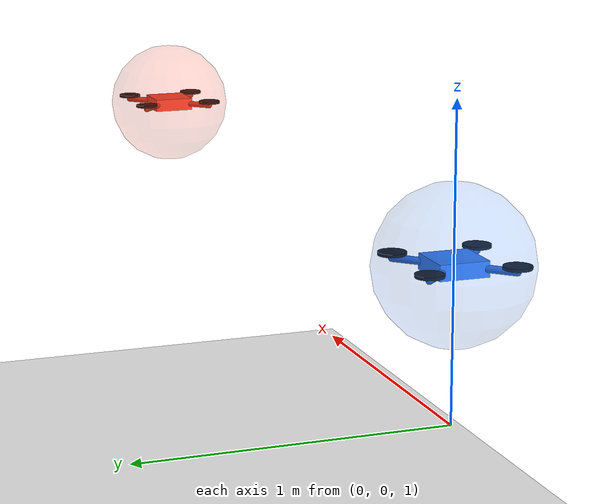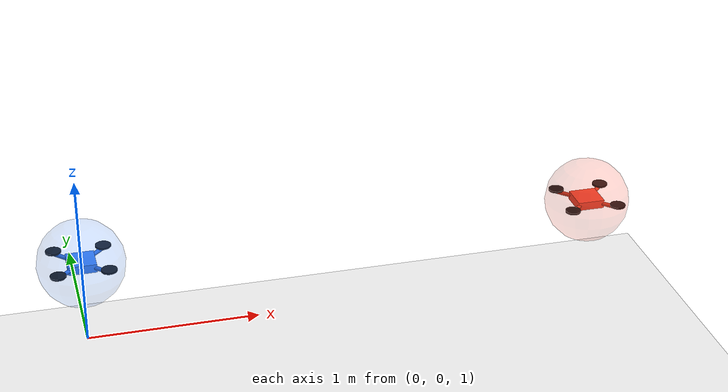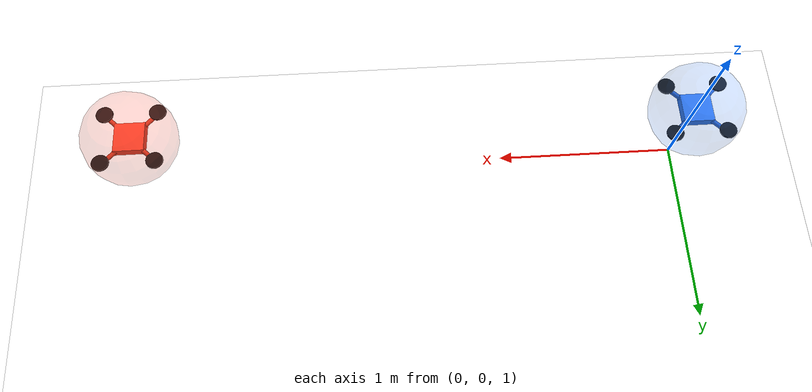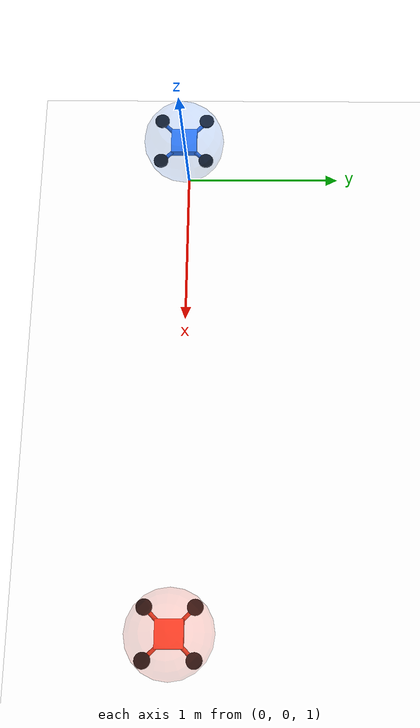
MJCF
<mujoco model="two_drones">

  <compiler angle="radian" autolimits="true"/>

  <option gravity="0 0 -9.81" timestep="0.002" integrator="RK4"
          cone="pyramidal" noslip_iterations="0"/>

  <visual>
    <headlight ambient="0.4 0.4 0.4" diffuse="0.8 0.8 0.8" specular="0.1 0.1 0.1"/>
    <rgba haze="0.15 0.25 0.35 1"/>
    <global fovy="60" linewidth="2"/>
  </visual>

  <asset>
    <texture type="skybox" builtin="gradient"
             rgb1="0.53 0.70 0.92" rgb2="0.12 0.18 0.30"
             width="512" height="512"/>
    <texture name="grid" type="2d" builtin="checker"
             rgb1="0.55 0.55 0.55" rgb2="0.45 0.45 0.45"
             width="512" height="512" mark="edge" markrgb="0.3 0.3 0.3"/>
    <material name="grid"    texture="grid" texrepeat="6 6" reflectance="0.1"/>
    <material name="m_evader"  rgba="0.20 0.50 1.00 1.0"/>
    <material name="m_pursuer" rgba="1.00 0.25 0.15 1.0"/>
    <material name="m_arm"     rgba="0.25 0.25 0.25 0.9"/>
  </asset>

  <worldbody>

    <!-- Lighting -->
    <light name="sun" pos="0 0 8" dir="0 0 -1"
           diffuse="0.9 0.9 0.9" specular="0.2 0.2 0.2" castshadow="true"/>
    <light name="fill" pos="5 -5 4" dir="-1 1 -1"
           diffuse="0.4 0.4 0.4" specular="0 0 0" castshadow="false"/>

    <!-- Ground (visual only, no contact with drones) -->
    <geom name="ground" type="plane" size="12 12 0.1"
          material="grid" contype="0" conaffinity="0" rgba="1 1 1 0.3"/>

    <!-- Workspace sphere boundary marker (visual wireframe) -->
    <!-- Sphere at [0, 0, 1.5] radius 4.0 m -->

    <!-- ══════════════════════════════════════════════════════
         EVADER  (drone 0)   — blue
         ════════════════════════════════════════════════════ -->
    <body name="evader" pos="0 0 1.5">
      <freejoint name="evader_joint"/>

      <inertial mass="1.08" pos="0 0 0"
                diaginertia="0.010 0.010 0.018"/>

      <!-- Central frame (box) -->
      <geom name="evader_frame" type="box" size="0.08 0.08 0.025"
            material="m_evader" contype="1" conaffinity="1"/>

      <!-- Arms (X-configuration) -->
      <geom type="capsule" size="0.012"
            fromto="-0.14 -0.14 0  0.14 0.14 0"
            rgba="0.15 0.40 0.85 0.9" contype="0" conaffinity="0"/>
      <geom type="capsule" size="0.012"
            fromto=" 0.14 -0.14 0 -0.14 0.14 0"
            rgba="0.15 0.40 0.85 0.9" contype="0" conaffinity="0"/>

      <!-- Motor discs (visual only) -->
      <geom type="cylinder" size="0.045 0.005" pos=" 0.14  0.14 0.015"
            rgba="0.05 0.05 0.05 0.9" contype="0" conaffinity="0"/>
      <geom type="cylinder" size="0.045 0.005" pos="-0.14  0.14 0.015"
            rgba="0.05 0.05 0.05 0.9" contype="0" conaffinity="0"/>
      <geom type="cylinder" size="0.045 0.005" pos=" 0.14 -0.14 0.015"
            rgba="0.05 0.05 0.05 0.9" contype="0" conaffinity="0"/>
      <geom type="cylinder" size="0.045 0.005" pos="-0.14 -0.14 0.015"
            rgba="0.05 0.05 0.05 0.9" contype="0" conaffinity="0"/>

      <!-- Bounding sphere for collision detection (d_min = 0.5 m → radius 0.25) -->
      <geom name="evader_col" type="sphere" size="0.25"
            rgba="0.2 0.5 1.0 0.05"
            contype="1" conaffinity="1"/>

    </body>

    <!-- ══════════════════════════════════════════════════════
         PURSUER (drone 1)   — red
         ════════════════════════════════════════════════════ -->
    <body name="pursuer" pos="3 0 1.5">
      <freejoint name="pursuer_joint"/>

      <inertial mass="1.08" pos="0 0 0"
                diaginertia="0.010 0.010 0.018"/>

      <!-- Central frame -->
      <geom name="pursuer_frame" type="box" size="0.08 0.08 0.025"
            material="m_pursuer" contype="1" conaffinity="1"/>

      <!-- Arms -->
      <geom type="capsule" size="0.012"
            fromto="-0.14 -0.14 0  0.14 0.14 0"
            rgba="0.85 0.20 0.10 0.9" contype="0" conaffinity="0"/>
      <geom type="capsule" size="0.012"
            fromto=" 0.14 -0.14 0 -0.14 0.14 0"
            rgba="0.85 0.20 0.10 0.9" contype="0" conaffinity="0"/>

      <!-- Motor discs -->
      <geom type="cylinder" size="0.045 0.005" pos=" 0.14  0.14 0.015"
            rgba="0.05 0.05 0.05 0.9" contype="0" conaffinity="0"/>
      <geom type="cylinder" size="0.045 0.005" pos="-0.14  0.14 0.015"
            rgba="0.05 0.05 0.05 0.9" contype="0" conaffinity="0"/>
      <geom type="cylinder" size="0.045 0.005" pos=" 0.14 -0.14 0.015"
            rgba="0.05 0.05 0.05 0.9" contype="0" conaffinity="0"/>
      <geom type="cylinder" size="0.045 0.005" pos="-0.14 -0.14 0.015"
            rgba="0.05 0.05 0.05 0.9" contype="0" conaffinity="0"/>

      <!-- Bounding sphere for collision detection -->
      <geom name="pursuer_col" type="sphere" size="0.25"
            rgba="1.0 0.25 0.15 0.05"
            contype="1" conaffinity="1"/>

    </body>

  </worldbody>

  <contact>
    <pair geom1="evader_col" geom2="pursuer_col" condim="1"/>
  </contact>

</mujoco>
